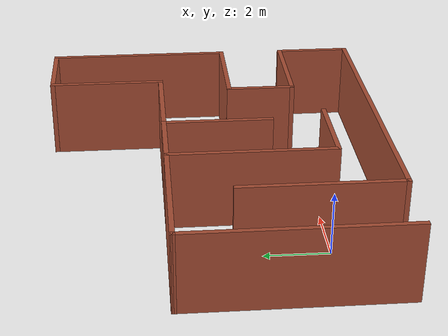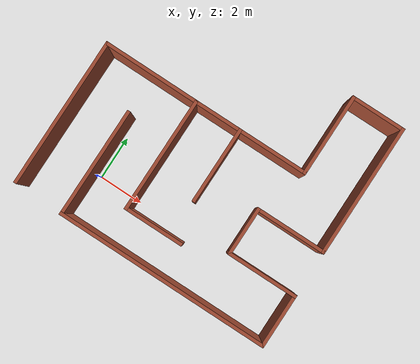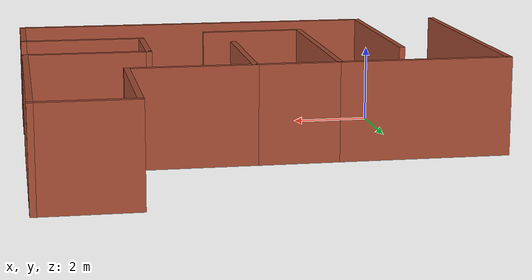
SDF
<?xml version='1.0'?>
<sdf version='1.7'>
  <model name='TestMaze1'>
    <pose>3.45819 3.12081 0 0 -0 0</pose>
    <link name='Wall_10'>
      <collision name='Wall_10_Collision'>
        <geometry>
          <box>
            <size>2.25 0.15 2.5</size>
          </box>
        </geometry>
        <pose>0 0 1.25 0 -0 0</pose>
      </collision>
      <visual name='Wall_10_Visual'>
        <pose>0 0 1.25 0 -0 0</pose>
        <geometry>
          <box>
            <size>2.25 0.15 2.5</size>
          </box>
        </geometry>
        <material>
          <script>
            <uri>file://media/materials/scripts/gazebo.material</uri>
            <name>Gazebo/Bricks</name>
          </script>
          <ambient>1 1 1 1</ambient>
        </material>
        <meta>
          <layer>0</layer>
        </meta>
      </visual>
      <pose>2.81602 -1.75 0 0 -0 1.5708</pose>
    </link>
    <link name='Wall_11'>
      <collision name='Wall_11_Collision'>
        <geometry>
          <box>
            <size>3.25 0.15 2.5</size>
          </box>
        </geometry>
        <pose>0 0 1.25 0 -0 0</pose>
      </collision>
      <visual name='Wall_11_Visual'>
        <pose>0 0 1.25 0 -0 0</pose>
        <geometry>
          <box>
            <size>3.25 0.15 2.5</size>
          </box>
        </geometry>
        <material>
          <script>
            <uri>file://media/materials/scripts/gazebo.material</uri>
            <name>Gazebo/Bricks</name>
          </script>
          <ambient>1 1 1 1</ambient>
        </material>
        <meta>
          <layer>0</layer>
        </meta>
      </visual>
      <pose>4.36602 -0.7 0 0 -0 0</pose>
    </link>
    <link name='Wall_12'>
      <collision name='Wall_12_Collision'>
        <geometry>
          <box>
            <size>6 0.15 2.5</size>
          </box>
        </geometry>
        <pose>0 0 1.25 0 -0 0</pose>
      </collision>
      <visual name='Wall_12_Visual'>
        <pose>0 0 1.25 0 -0 0</pose>
        <geometry>
          <box>
            <size>6 0.15 2.5</size>
          </box>
        </geometry>
        <material>
          <script>
            <uri>file://media/materials/scripts/gazebo.material</uri>
            <name>Gazebo/Bricks</name>
          </script>
          <ambient>1 1 1 1</ambient>
        </material>
        <meta>
          <layer>0</layer>
        </meta>
      </visual>
      <pose>5.91602 2.225 0 0 -0 1.5708</pose>
    </link>
    <link name='Wall_13'>
      <collision name='Wall_13_Collision'>
        <geometry>
          <box>
            <size>2.5 0.15 2.5</size>
          </box>
        </geometry>
        <pose>0 0 1.25 0 -0 0</pose>
      </collision>
      <visual name='Wall_13_Visual'>
        <pose>0 0 1.25 0 -0 0</pose>
        <geometry>
          <box>
            <size>2.5 0.15 2.5</size>
          </box>
        </geometry>
        <material>
          <script>
            <uri>file://media/materials/scripts/gazebo.material</uri>
            <name>Gazebo/Bricks</name>
          </script>
          <ambient>1 1 1 1</ambient>
        </material>
        <meta>
          <layer>0</layer>
        </meta>
      </visual>
      <pose>4.74102 5.15 0 0 -0 3.14159</pose>
    </link>
    <link name='Wall_14'>
      <collision name='Wall_14_Collision'>
        <geometry>
          <box>
            <size>3.75 0.15 2.5</size>
          </box>
        </geometry>
        <pose>0 0 1.25 0 -0 0</pose>
      </collision>
      <visual name='Wall_14_Visual'>
        <pose>0 0 1.25 0 -0 0</pose>
        <geometry>
          <box>
            <size>3.75 0.15 2.5</size>
          </box>
        </geometry>
        <material>
          <script>
            <uri>file://media/materials/scripts/gazebo.material</uri>
            <name>Gazebo/Bricks</name>
          </script>
          <ambient>1 1 1 1</ambient>
        </material>
        <meta>
          <layer>0</layer>
        </meta>
      </visual>
      <pose>3.56602 3.35 0 0 -0 -1.5708</pose>
    </link>
    <link name='Wall_15'>
      <collision name='Wall_15_Collision'>
        <geometry>
          <box>
            <size>3.25 0.15 2.5</size>
          </box>
        </geometry>
        <pose>0 0 1.25 0 -0 0</pose>
      </collision>
      <visual name='Wall_15_Visual'>
        <pose>0 0 1.25 0 -0 0</pose>
        <geometry>
          <box>
            <size>3.25 0.15 2.5</size>
          </box>
        </geometry>
        <material>
          <script>
            <uri>file://media/materials/scripts/gazebo.material</uri>
            <name>Gazebo/Bricks</name>
          </script>
          <ambient>1 1 1 1</ambient>
        </material>
        <meta>
          <layer>0</layer>
        </meta>
      </visual>
      <pose>2.01602 1.55 0 0 -0 3.14159</pose>
    </link>
    <link name='Wall_16'>
      <collision name='Wall_16_Collision'>
        <geometry>
          <box>
            <size>3.5 0.15 2.5</size>
          </box>
        </geometry>
        <pose>0 0 1.25 0 -0 0</pose>
      </collision>
      <visual name='Wall_16_Visual'>
        <pose>0 0 1.25 0 -0 0</pose>
        <geometry>
          <box>
            <size>3.5 0.15 2.5</size>
          </box>
        </geometry>
        <material>
          <script>
            <uri>file://media/materials/scripts/gazebo.material</uri>
            <name>Gazebo/Bricks</name>
          </script>
          <ambient>1 1 1 1</ambient>
        </material>
        <meta>
          <layer>0</layer>
        </meta>
      </visual>
      <pose>0.466024 -0.125 0 0 -0 -1.5708</pose>
    </link>
    <link name='Wall_18'>
      <collision name='Wall_18_Collision'>
        <geometry>
          <box>
            <size>2.25 0.15 2.5</size>
          </box>
        </geometry>
        <pose>0 0 1.25 0 -0 0</pose>
      </collision>
      <visual name='Wall_18_Visual'>
        <pose>0 0 1.25 0 -0 0</pose>
        <geometry>
          <box>
            <size>2.25 0.15 2.5</size>
          </box>
        </geometry>
        <material>
          <script>
            <uri>file://media/materials/scripts/gazebo.material</uri>
            <name>Gazebo/Bricks</name>
          </script>
          <ambient>1 1 1 1</ambient>
        </material>
        <meta>
          <layer>0</layer>
        </meta>
      </visual>
      <pose>-0.583976 1.55 0 0 -0 3.14159</pose>
    </link>
    <link name='Wall_19'>
      <collision name='Wall_19_Collision'>
        <geometry>
          <box>
            <size>5.25 0.15 2.5</size>
          </box>
        </geometry>
        <pose>0 0 1.25 0 -0 0</pose>
      </collision>
      <visual name='Wall_19_Visual'>
        <pose>0 0 1.25 0 -0 0</pose>
        <geometry>
          <box>
            <size>5.25 0.15 2.5</size>
          </box>
        </geometry>
        <material>
          <script>
            <uri>file://media/materials/scripts/gazebo.material</uri>
            <name>Gazebo/Bricks</name>
          </script>
          <ambient>1 1 1 1</ambient>
        </material>
        <meta>
          <layer>0</layer>
        </meta>
      </visual>
      <pose>-1.63398 -1 0 0 -0 -1.5708</pose>
    </link>
    <link name='Wall_20'>
      <collision name='Wall_20_Collision'>
        <geometry>
          <box>
            <size>2.75 0.15 2.5</size>
          </box>
        </geometry>
        <pose>0 0 1.25 0 -0 0</pose>
      </collision>
      <visual name='Wall_20_Visual'>
        <pose>0 0 1.25 0 -0 0</pose>
        <geometry>
          <box>
            <size>2.75 0.15 2.5</size>
          </box>
        </geometry>
        <material>
          <script>
            <uri>file://media/materials/scripts/gazebo.material</uri>
            <name>Gazebo/Bricks</name>
          </script>
          <ambient>1 1 1 1</ambient>
        </material>
        <meta>
          <layer>0</layer>
        </meta>
      </visual>
      <pose>-0.333976 -3.55 0 0 -0 0</pose>
    </link>
    <link name='Wall_22'>
      <collision name='Wall_22_Collision'>
        <geometry>
          <box>
            <size>5 0.15 2.5</size>
          </box>
        </geometry>
        <pose>0 0 1.25 0 -0 0</pose>
      </collision>
      <visual name='Wall_22_Visual'>
        <pose>0 0 1.25 0 -0 0</pose>
        <geometry>
          <box>
            <size>5 0.15 2.5</size>
          </box>
        </geometry>
        <material>
          <script>
            <uri>file://media/materials/scripts/gazebo.material</uri>
            <name>Gazebo/Bricks</name>
          </script>
          <ambient>1 1 1 1</ambient>
        </material>
        <meta>
          <layer>0</layer>
        </meta>
      </visual>
      <pose>-3.68398 -2.725 0 0 -0 1.5708</pose>
    </link>
    <link name='Wall_24'>
      <collision name='Wall_24_Collision'>
        <geometry>
          <box>
            <size>6.75 0.15 2.5</size>
          </box>
        </geometry>
        <pose>0 0 1.25 0 -0 0</pose>
      </collision>
      <visual name='Wall_24_Visual'>
        <pose>0 0 1.25 0 -0 0</pose>
        <geometry>
          <box>
            <size>6.75 0.15 2.5</size>
          </box>
        </geometry>
        <material>
          <script>
            <uri>file://media/materials/scripts/gazebo.material</uri>
            <name>Gazebo/Bricks</name>
          </script>
          <ambient>1 1 1 1</ambient>
        </material>
        <meta>
          <layer>0</layer>
        </meta>
      </visual>
      <pose>-5.91576 -1.76943 0 0 -0 1.5708</pose>
    </link>
    <link name='Wall_25'>
      <collision name='Wall_25_Collision'>
        <geometry>
          <box>
            <size>4.43181 0.15 2.5</size>
          </box>
        </geometry>
        <pose>0 0 1.25 0 -0 0</pose>
      </collision>
      <visual name='Wall_25_Visual'>
        <pose>0 0 1.25 0 -0 0</pose>
        <geometry>
          <box>
            <size>4.43181 0.15 2.5</size>
          </box>
        </geometry>
        <material>
          <script>
            <uri>file://media/materials/scripts/gazebo.material</uri>
            <name>Gazebo/Bricks</name>
          </script>
          <ambient>1 1 1 1</ambient>
        </material>
        <meta>
          <layer>0</layer>
        </meta>
      </visual>
      <pose>-3.77487 1.55758 0 0 -0 -0.00354</pose>
    </link>
    <link name='Wall_7'>
      <collision name='Wall_7_Collision'>
        <geometry>
          <box>
            <size>9.75 0.15 2.5</size>
          </box>
        </geometry>
        <pose>0 0 1.25 0 -0 0</pose>
      </collision>
      <visual name='Wall_7_Visual'>
        <pose>0 0 1.25 0 -0 0</pose>
        <geometry>
          <box>
            <size>9.75 0.15 2.5</size>
          </box>
        </geometry>
        <material>
          <script>
            <uri>file://media/materials/scripts/gazebo.material</uri>
            <name>Gazebo/Bricks</name>
          </script>
          <ambient>1 1 1 1</ambient>
        </material>
        <meta>
          <layer>0</layer>
        </meta>
      </visual>
      <pose>1.11602 -5.15 0 0 -0 0</pose>
    </link>
    <link name='Wall_8'>
      <collision name='Wall_8_Collision'>
        <geometry>
          <box>
            <size>2.5 0.15 2.5</size>
          </box>
        </geometry>
        <pose>0 0 1.25 0 -0 0</pose>
      </collision>
      <visual name='Wall_8_Visual'>
        <pose>0 0 1.25 0 -0 0</pose>
        <geometry>
          <box>
            <size>2.5 0.15 2.5</size>
          </box>
        </geometry>
        <material>
          <script>
            <uri>file://media/materials/scripts/gazebo.material</uri>
            <name>Gazebo/Bricks</name>
          </script>
          <ambient>1 1 1 1</ambient>
        </material>
        <meta>
          <layer>0</layer>
        </meta>
      </visual>
      <pose>5.91602 -3.975 0 0 -0 1.5708</pose>
    </link>
    <link name='Wall_9'>
      <collision name='Wall_9_Collision'>
        <geometry>
          <box>
            <size>3.25 0.15 2.5</size>
          </box>
        </geometry>
        <pose>0 0 1.25 0 -0 0</pose>
      </collision>
      <visual name='Wall_9_Visual'>
        <pose>0 0 1.25 0 -0 0</pose>
        <geometry>
          <box>
            <size>3.25 0.15 2.5</size>
          </box>
        </geometry>
        <material>
          <script>
            <uri>file://media/materials/scripts/gazebo.material</uri>
            <name>Gazebo/Bricks</name>
          </script>
          <ambient>1 1 1 1</ambient>
        </material>
        <meta>
          <layer>0</layer>
        </meta>
      </visual>
      <pose>4.36602 -2.8 0 0 -0 3.14159</pose>
    </link>
    <static>1</static>
  </model>
</sdf>
